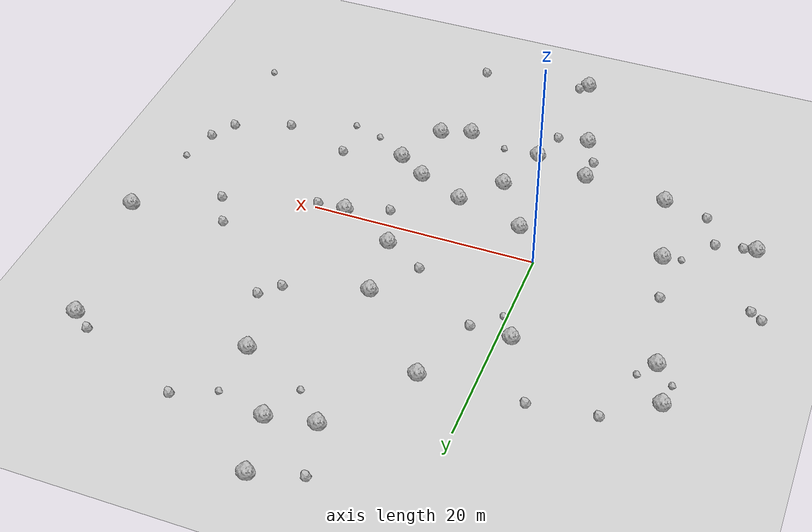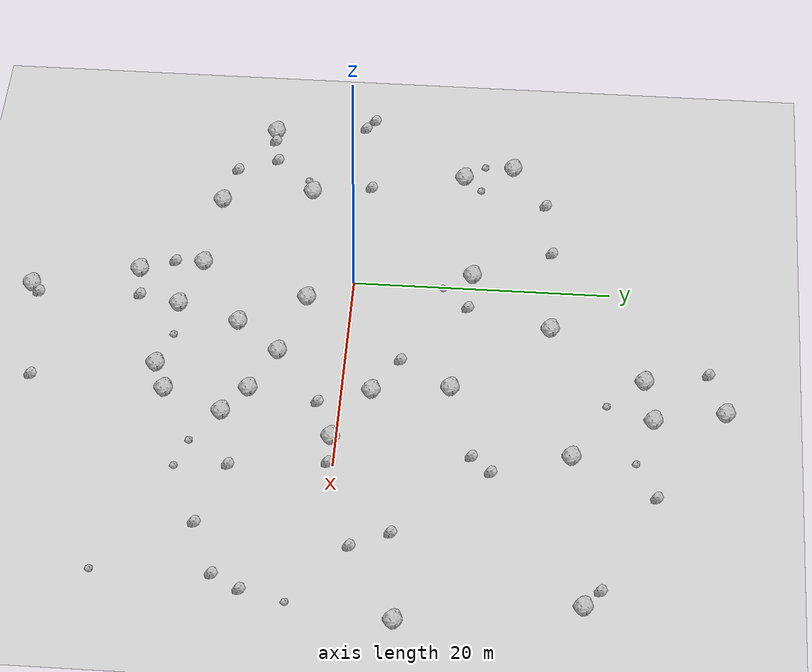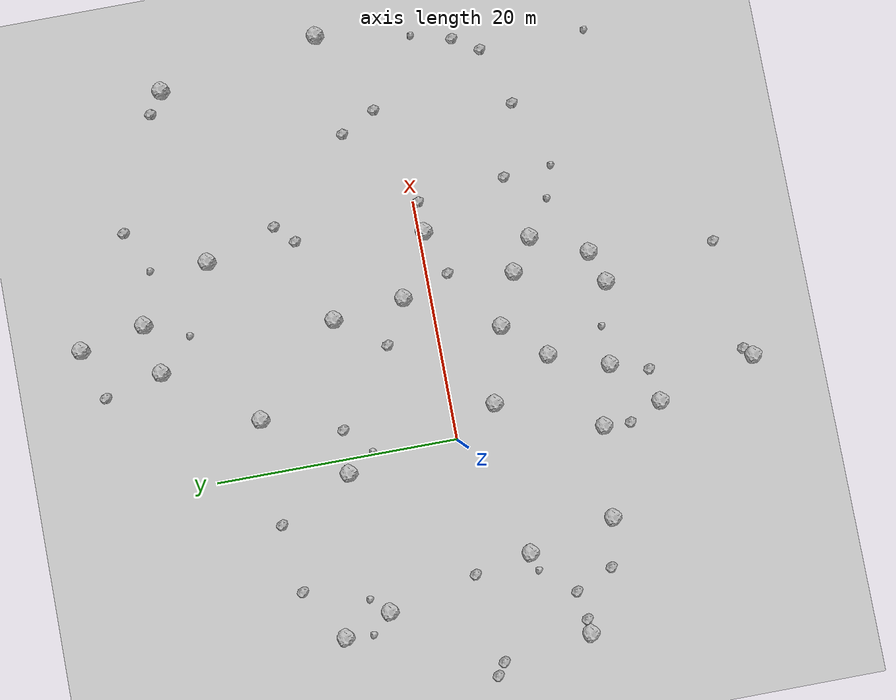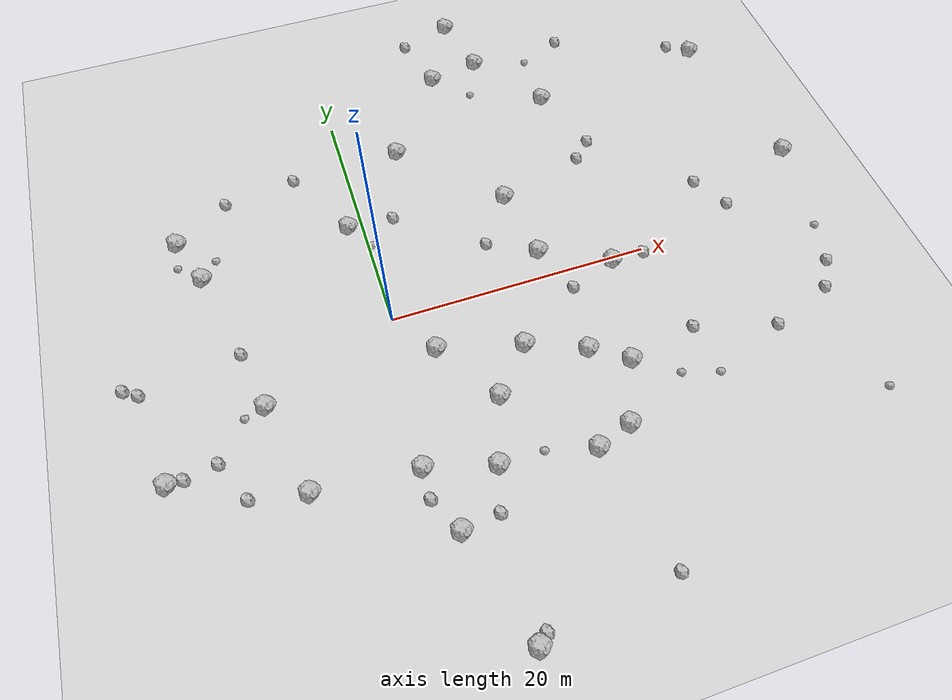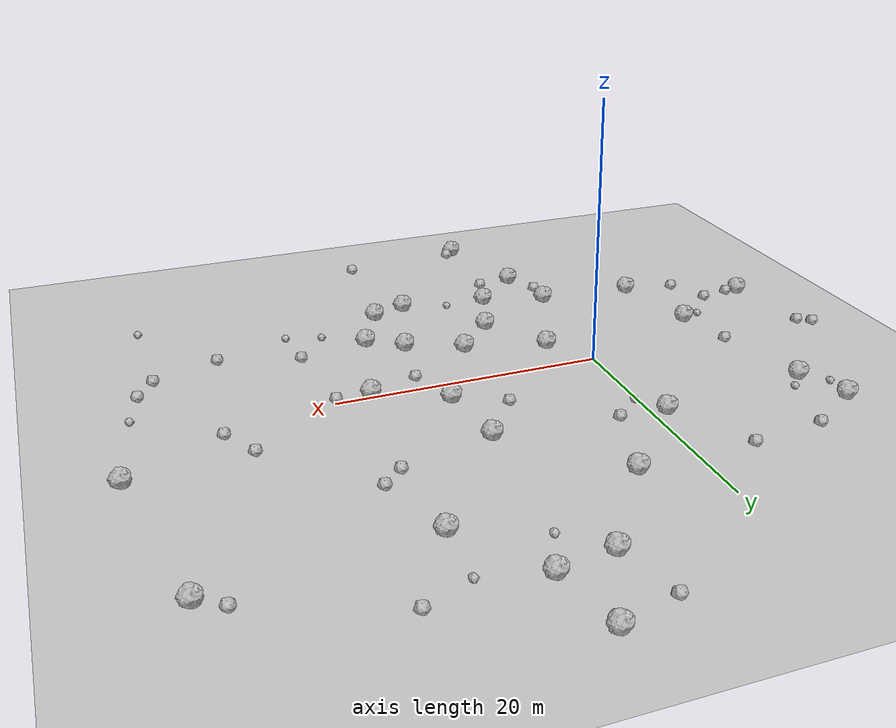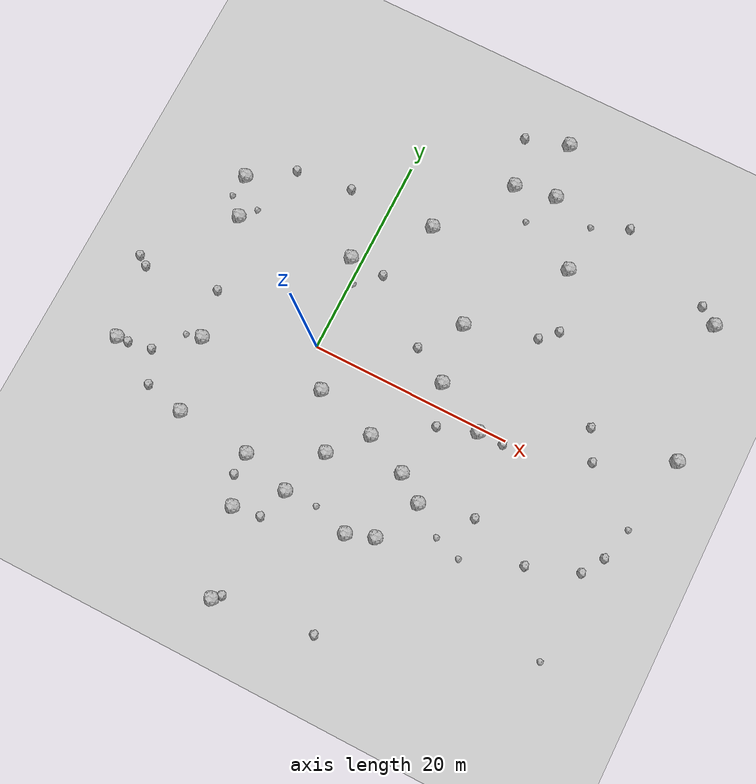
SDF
<sdf version="1.6">
 <world name="default">
  <include><uri>model://custom_ground</uri></include>
  <include><uri>model://sun</uri></include>
  <model name="rock1_0_0">
   <include><uri>model://rock1</uri><pose>11.550404807098296 8.20753072206665 0.5 0 0 0</pose></include>
  </model>
  <model name="rock1_0_1">
   <include><uri>model://rock1</uri><pose>-12.655127494358954 7.95848991887226 0.5 0 0 0</pose></include>
  </model>
  <model name="rock1_0_2">
   <include><uri>model://rock1</uri><pose>10.582291446313164 -14.382800737763876 0.5 0 0 0</pose></include>
  </model>
  <model name="rock1_0_3">
   <include><uri>model://rock1</uri><pose>35.161367688245285 5.5246842354656565 0.5 0 0 0</pose></include>
  </model>
  <model name="rock1_0_4">
   <include><uri>model://rock1</uri><pose>18.15653817740455 17.617917946867436 0.5 0 0 0</pose></include>
  </model>
  <model name="rock1_0_5">
   <include><uri>model://rock1</uri><pose>-10.07474883501904 -4.141929540057944 0.5 0 0 0</pose></include>
  </model>
  <model name="rock1_0_6">
   <include><uri>model://rock1</uri><pose>-1.041880895437469 -11.974386341888401 0.5 0 0 0</pose></include>
  </model>
  <model name="rock1_0_7">
   <include><uri>model://rock1</uri><pose>17.37175020576059 -0.3996413124813145 0.5 0 0 0</pose></include>
  </model>
  <model name="rock1_0_8">
   <include><uri>model://rock1</uri><pose>12.732997155793562 -7.05597879800208 0.5 0 0 0</pose></include>
  </model>
  <model name="rock1_0_9">
   <include><uri>model://rock1</uri><pose>4.569464579269447 15.540313734116928 0.5 0 0 0</pose></include>
  </model>
  <model name="rock1_0_10">
   <include><uri>model://rock1</uri><pose>3.8263515201866127 -13.393244631349994 0.5 0 0 0</pose></include>
  </model>
  <model name="rock1_0_11">
   <include><uri>model://rock1</uri><pose>-14.03676279933091 11.850364888012287 0.5 0 0 0</pose></include>
  </model>
  <model name="rock1_0_12">
   <include><uri>model://rock1</uri><pose>12.82079753391129 29.054645235850124 0.5 0 0 0</pose></include>
  </model>
  <model name="rock1_0_13">
   <include><uri>model://rock1</uri><pose>9.81982145204961 22.889881323841614 0.5 0 0 0</pose></include>
  </model>
  <model name="rock1_0_14">
   <include><uri>model://rock1</uri><pose>12.273032044167174 2.26242828016089 0.5 0 0 0</pose></include>
  </model>
  <model name="rock1_0_15">
   <include><uri>model://rock1</uri><pose>5.518809096876819 -8.56740991006307 0.5 0 0 0</pose></include>
  </model>
  <model name="rock1_0_16">
   <include><uri>model://rock1</uri><pose>0.12715256635353356 -16.891572030885317 0.5 0 0 0</pose></include>
  </model>
  <model name="rock1_0_17">
   <include><uri>model://rock1</uri><pose>32.916137609987324 18.943021476173605 0.5 0 0 0</pose></include>
  </model>
  <model name="rock1_0_18">
   <include><uri>model://rock1</uri><pose>-8.487745427410886 -11.273275015380328 0.5 0 0 0</pose></include>
  </model>
  <model name="rock1_0_19">
   <include><uri>model://rock1</uri><pose>13.94022276593477 23.645408746073258 0.5 0 0 0</pose></include>
  </model>
  <model name="rock1_0_20">
   <include><uri>model://rock1</uri><pose>15.338990433457987 -8.865070486528076 0.5 0 0 0</pose></include>
  </model>
  <model name="rock1_0_21">
   <include><uri>model://rock1</uri><pose>2.3913502774185567 -3.519492212549178 0.5 0 0 0</pose></include>
  </model>
  <model name="rock1_0_22">
   <include><uri>model://rock1</uri><pose>8.530364247524986 -5.210260573267874 0.5 0 0 0</pose></include>
  </model>
  <model name="rock1_0_23">
   <include><uri>model://rock1</uri><pose>-1.0493687348473983 9.23012227353675 0.5 0 0 0</pose></include>
  </model>
  <model name="rock1_0_24">
   <include><uri>model://rock1</uri><pose>-17.31589377884172 -7.758488635101127 0.5 0 0 0</pose></include>
  </model>
  <model name="rock1_0_25">
   <include><uri>model://rock1</uri><pose>2.4202465113991742 -25.096624748404576 0.5 0 0 0</pose></include>
  </model>
  <model name="rock1_0_26">
   <include><uri>model://rock1</uri><pose>13.252862835879242 -13.444271930786059 0.5 0 0 0</pose></include>
  </model>
  <model name="rock2_0_0">
   <include><uri>model://rock2</uri><pose>32.88862205007151 -5.621215883689953 0.3 0 0 0</pose></include>
  </model>
  <model name="rock2_0_1">
   <include><uri>model://rock2</uri><pose>-19.37820632890142 0.2529015471853171 0.3 0 0 0</pose></include>
  </model>
  <model name="rock2_0_2">
   <include><uri>model://rock2</uri><pose>31.145617053296434 20.163308914386285 0.3 0 0 0</pose></include>
  </model>
  <model name="rock2_0_3">
   <include><uri>model://rock2</uri><pose>-9.875952691028422 14.663636454395395 0.3 0 0 0</pose></include>
  </model>
  <model name="rock2_0_4">
   <include><uri>model://rock2</uri><pose>26.631165624010592 -9.55839742548466 0.3 0 0 0</pose></include>
  </model>
  <model name="rock2_0_5">
   <include><uri>model://rock2</uri><pose>20.638481126959007 -7.7332073803211685 0.3 0 0 0</pose></include>
  </model>
  <model name="rock2_0_6">
   <include><uri>model://rock2</uri><pose>8.64999678402572 4.256344309764231 0.3 0 0 0</pose></include>
  </model>
  <model name="rock2_0_7">
   <include><uri>model://rock2</uri><pose>-18.377610543577912 -0.4275041215964208 0.3 0 0 0</pose></include>
  </model>
  <model name="rock2_0_8">
   <include><uri>model://rock2</uri><pose>3.1063081303071414 -24.440769294166476 0.3 0 0 0</pose></include>
  </model>
  <model name="rock2_0_9">
   <include><uri>model://rock2</uri><pose>-1.1893039514597739 -14.20727474868675 0.3 0 0 0</pose></include>
  </model>
  <model name="rock2_0_10">
   <include><uri>model://rock2</uri><pose>2.831208777188987 -16.538772207086446 0.3 0 0 0</pose></include>
  </model>
  <model name="rock2_0_11">
   <include><uri>model://rock2</uri><pose>28.13263373087637 1.8729936184298595 0.3 0 0 0</pose></include>
  </model>
  <model name="rock2_0_12">
   <include><uri>model://rock2</uri><pose>13.610590015665416 -1.6952317786291893 0.3 0 0 0</pose></include>
  </model>
  <model name="rock2_0_13">
   <include><uri>model://rock2</uri><pose>-16.23976366790187 -7.702812068775042 0.3 0 0 0</pose></include>
  </model>
  <model name="rock2_0_14">
   <include><uri>model://rock2</uri><pose>20.01591413422073 11.739379536589865 0.3 0 0 0</pose></include>
  </model>
  <model name="rock2_0_15">
   <include><uri>model://rock2</uri><pose>12.26130204294381 -23.750151886124673 0.3 0 0 0</pose></include>
  </model>
  <model name="rock2_0_16">
   <include><uri>model://rock2</uri><pose>19.89775196370308 -0.37984109139596356 0.3 0 0 0</pose></include>
  </model>
  <model name="rock2_0_17">
   <include><uri>model://rock2</uri><pose>18.49055225929829 10.22240512039015 0.3 0 0 0</pose></include>
  </model>
  <model name="rock2_0_18">
   <include><uri>model://rock2</uri><pose>-11.05039824476627 0.5681652100934045 0.3 0 0 0</pose></include>
  </model>
  <model name="rock2_0_19">
   <include><uri>model://rock2</uri><pose>31.556470437699893 -7.759371649052113 0.3 0 0 0</pose></include>
  </model>
  <model name="rock2_0_20">
   <include><uri>model://rock2</uri><pose>8.572412103512526 27.76299993754619 0.3 0 0 0</pose></include>
  </model>
  <model name="rock2_0_21">
   <include><uri>model://rock2</uri><pose>-4.238730082883633 15.37028095402556 0.3 0 0 0</pose></include>
  </model>
  <model name="rock2_0_22">
   <include><uri>model://rock2</uri><pose>26.614972170026306 4.77883883761951 0.3 0 0 0</pose></include>
  </model>
  <model name="rock2_0_23">
   <include><uri>model://rock2</uri><pose>-13.88836263204416 -7.297546786318165 0.3 0 0 0</pose></include>
  </model>
  <model name="rock2_0_24">
   <include><uri>model://rock2</uri><pose>21.74168476889583 24.031291084031245 0.3 0 0 0</pose></include>
  </model>
  <model name="rock2_0_25">
   <include><uri>model://rock2</uri><pose>-12.470324618292377 -10.415446832609852 0.3 0 0 0</pose></include>
  </model>
  <model name="rock2_0_26">
   <include><uri>model://rock2</uri><pose>2.4573669696090796 9.072298858932157 0.3 0 0 0</pose></include>
  </model>
  <model name="rock3_0_0">
   <include><uri>model://rock3</uri><pose>6.993009023985518 -13.412937447003351 0.2 0 0 0</pose></include>
  </model>
  <model name="rock3_0_1">
   <include><uri>model://rock3</uri><pose>-11.472418327668898 9.373481537090903 0.2 0 0 0</pose></include>
  </model>
  <model name="rock3_0_2">
   <include><uri>model://rock3</uri><pose>0.2625537447536175 7.005558700565231 0.2 0 0 0</pose></include>
  </model>
  <model name="rock3_0_3">
   <include><uri>model://rock3</uri><pose>18.24311586336779 -10.948956204322496 0.2 0 0 0</pose></include>
  </model>
  <model name="rock3_0_4">
   <include><uri>model://rock3</uri><pose>18.239602347671976 22.426128875738435 0.2 0 0 0</pose></include>
  </model>
  <model name="rock3_0_5">
   <include><uri>model://rock3</uri><pose>33.75647631215188 -2.3102644580227327 0.2 0 0 0</pose></include>
  </model>
  <model name="rock3_0_6">
   <include><uri>model://rock3</uri><pose>-14.341982382759271 9.57763000143568 0.2 0 0 0</pose></include>
  </model>
  <model name="rock3_0_7">
   <include><uri>model://rock3</uri><pose>-11.677110118867574 -4.5873234722666005 0.2 0 0 0</pose></include>
  </model>
  <model name="rock3_0_8">
   <include><uri>model://rock3</uri><pose>12.373634202021385 20.1021383590407 0.2 0 0 0</pose></include>
  </model>
  <model name="rock3_0_9">
   <include><uri>model://rock3</uri><pose>31.61331501125421 -16.632598711577714 0.2 0 0 0</pose></include>
  </model>
  <model name="rock3_0_10">
   <include><uri>model://rock3</uri><pose>20.923608512600573 -11.775185009131192 0.2 0 0 0</pose></include>
  </model>
 </world>
</sdf>
